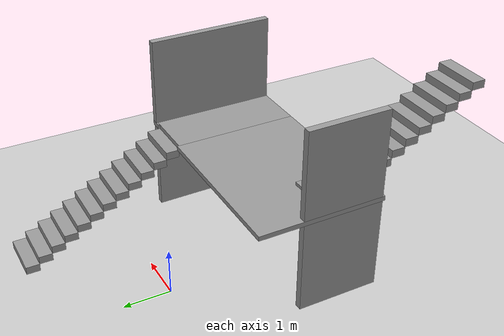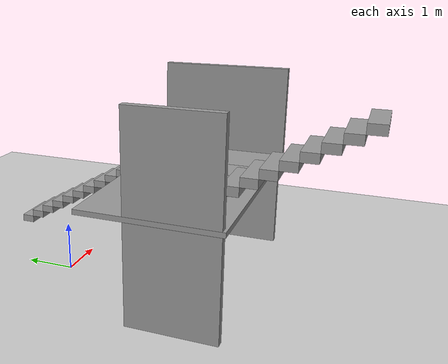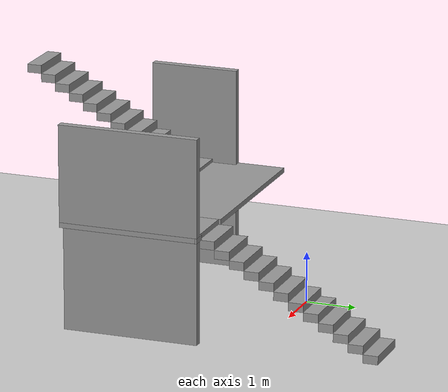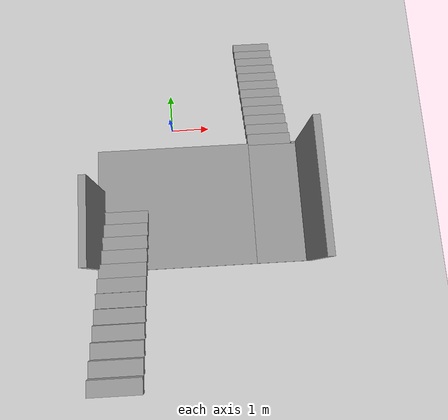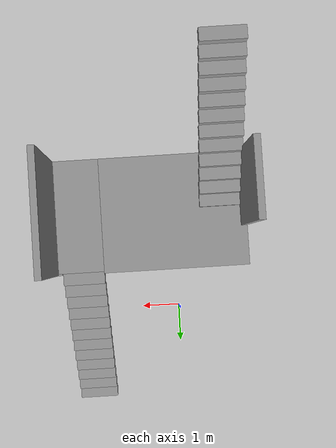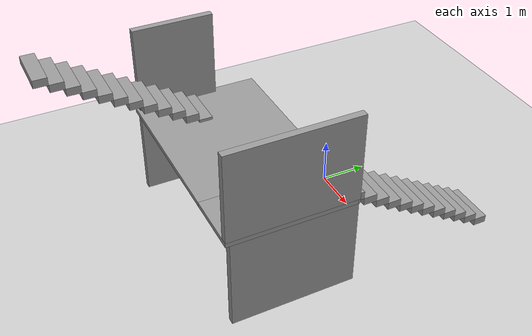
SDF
<sdf version="1.7">
 <world name="default">
  <light name="sun" type="directional">
   <pose>0 0 10 0 -0 0</pose>
   <diffuse>0.8 0.8 0.8 1</diffuse>
   <specular>0.2 0.2 0.2 1</specular>
   <attenuation>
    <range>1000</range>
    <constant>0.9</constant>
    <linear>0.01</linear>
    <quadratic>0.001</quadratic>
   </attenuation>
   <direction>-0.5 0.1 -0.9</direction>
   <spot><inner_angle>0</inner_angle><outer_angle>0</outer_angle><falloff>0</falloff></spot>
  </light>
  <model name="ground_plane">
   <static>1</static>
   <link name="link">
    <collision name="collision">
     <geometry><plane><normal>0 0 1</normal><size>100 100</size></plane></geometry>
     <surface><friction><ode><mu>100</mu><mu2>50</mu2></ode></friction></surface>
    </collision>
    <visual name="visual">
     <cast_shadows>0</cast_shadows>
     <geometry><plane><normal>0 0 1</normal><size>100 100</size></plane></geometry>
     <material>
      <script><uri>file://media/materials/scripts/gazebo.material</uri><name>Gazebo/Grey</name></script>
     </material>
    </visual>
   </link>
  </model>
  <gravity>0 0 -9.8</gravity>
  <magnetic_field>6e-06 2.3e-05 -4.2e-05</magnetic_field>
  <atmosphere type="adiabatic"/>
  <physics type="ode">
   <max_step_size>0.001</max_step_size>
   <real_time_factor>1</real_time_factor>
   <real_time_update_rate>1000</real_time_update_rate>
  </physics>
  <scene><ambient>0.4 0.4 0.4 1</ambient><background>0.7 0.7 0.7 1</background><shadows>1</shadows></scene>
  <audio><device>default</device></audio>
  <spherical_coordinates>
   <surface_model>EARTH_WGS84</surface_model>
   <latitude_deg>0</latitude_deg>
   <longitude_deg>0</longitude_deg>
   <elevation>0</elevation>
   <heading_deg>0</heading_deg>
  </spherical_coordinates>
  <model name="2l">
   <pose>0.72122 -1.80053 0 0 -0 0</pose>
   <link name="Floor_9">
    <pose>-2e-05 -0.636474 2 0 -0 0</pose>
    <visual name="Floor_9_Visual_0">
     <pose>-0.621974 0 0.05 0 -0 0</pose>
     <geometry><box><size>3.4898 2.75 0.1</size></box></geometry>
     <material>
      <script><uri>file://media/materials/scripts/gazebo.material</uri><name>Gazebo/Grey</name></script>
      <ambient>1 1 1 1</ambient>
     </material>
     <meta><layer>1</layer></meta>
    </visual>
    <collision name="Floor_9_Collision_0">
     <geometry><box><size>3.4898 2.75 0.1</size></box></geometry>
     <pose>-0.621974 0 0.05 0 -0 0</pose>
    </collision>
    <visual name="Floor_9_Visual_1">
     <pose>1.7449 -0.019375 0.05 0 -0 0</pose>
     <geometry><box><size>1.24395 2.71125 0.1</size></box></geometry>
     <material>
      <script><uri>file://media/materials/scripts/gazebo.material</uri><name>Gazebo/Grey</name></script>
      <ambient>1 1 1 1</ambient>
     </material>
     <meta><layer>1</layer></meta>
    </visual>
    <collision name="Floor_9_Collision_1">
     <geometry><box><size>1.24395 2.71125 0.1</size></box></geometry>
     <pose>1.7449 -0.019375 0.05 0 -0 0</pose>
    </collision>
    <visual name="Floor_9_Visual_2">
     <pose>2.2449 1.35563 0.05 0 -0 0</pose>
     <geometry><box><size>0.243948 0.03875 0.1</size></box></geometry>
     <material>
      <script><uri>file://media/materials/scripts/gazebo.material</uri><name>Gazebo/Grey</name></script>
      <ambient>1 1 1 1</ambient>
     </material>
     <meta><layer>1</layer></meta>
    </visual>
    <collision name="Floor_9_Collision_2">
     <geometry><box><size>0.243948 0.03875 0.1</size></box></geometry>
     <pose>2.2449 1.35563 0.05 0 -0 0</pose>
    </collision>
   </link>
   <link name="Stairs_2">
    <visual name="Stairs_2_Visual_0">
     <pose>1.62291 4.05394 0.083333 0 -0 0</pose>
     <geometry><box><size>1 0.291667 0.166667</size></box></geometry>
     <material>
      <script><uri>file://media/materials/scripts/gazebo.material</uri><name>Gazebo/Grey</name></script>
      <ambient>1 1 1 1</ambient>
     </material>
     <meta><layer>0</layer></meta>
    </visual>
    <collision name="Stairs_2_Collision_0">
     <geometry><box><size>1 0.291667 0.166667</size></box></geometry>
     <pose>1.62291 4.05394 0.083333 0 -0 0</pose>
    </collision>
    <visual name="Stairs_2_Visual_1">
     <pose>1.62291 3.76228 0.25 0 -0 0</pose>
     <geometry><box><size>1 0.291667 0.166667</size></box></geometry>
     <material>
      <script><uri>file://media/materials/scripts/gazebo.material</uri><name>Gazebo/Grey</name></script>
      <ambient>1 1 1 1</ambient>
     </material>
     <meta><layer>0</layer></meta>
    </visual>
    <collision name="Stairs_2_Collision_1">
     <geometry><box><size>1 0.291667 0.166667</size></box></geometry>
     <pose>1.62291 3.76228 0.25 0 -0 0</pose>
    </collision>
    <visual name="Stairs_2_Visual_2">
     <pose>1.62291 3.47061 0.416667 0 -0 0</pose>
     <geometry><box><size>1 0.291667 0.166667</size></box></geometry>
     <material>
      <script><uri>file://media/materials/scripts/gazebo.material</uri><name>Gazebo/Grey</name></script>
      <ambient>1 1 1 1</ambient>
     </material>
     <meta><layer>0</layer></meta>
    </visual>
    <collision name="Stairs_2_Collision_2">
     <geometry><box><size>1 0.291667 0.166667</size></box></geometry>
     <pose>1.62291 3.47061 0.416667 0 -0 0</pose>
    </collision>
    <visual name="Stairs_2_Visual_3">
     <pose>1.62291 3.17894 0.583333 0 -0 0</pose>
     <geometry><box><size>1 0.291667 0.166667</size></box></geometry>
     <material>
      <script><uri>file://media/materials/scripts/gazebo.material</uri><name>Gazebo/Grey</name></script>
      <ambient>1 1 1 1</ambient>
     </material>
     <meta><layer>0</layer></meta>
    </visual>
    <collision name="Stairs_2_Collision_3">
     <geometry><box><size>1 0.291667 0.166667</size></box></geometry>
     <pose>1.62291 3.17894 0.583333 0 -0 0</pose>
    </collision>
    <visual name="Stairs_2_Visual_4">
     <pose>1.62291 2.88728 0.75 0 -0 0</pose>
     <geometry><box><size>1 0.291667 0.166667</size></box></geometry>
     <material>
      <script><uri>file://media/materials/scripts/gazebo.material</uri><name>Gazebo/Grey</name></script>
      <ambient>1 1 1 1</ambient>
     </material>
     <meta><layer>0</layer></meta>
    </visual>
    <collision name="Stairs_2_Collision_4">
     <geometry><box><size>1 0.291667 0.166667</size></box></geometry>
     <pose>1.62291 2.88728 0.75 0 -0 0</pose>
    </collision>
    <visual name="Stairs_2_Visual_5">
     <pose>1.62291 2.59561 0.916667 0 -0 0</pose>
     <geometry><box><size>1 0.291667 0.166667</size></box></geometry>
     <material>
      <script><uri>file://media/materials/scripts/gazebo.material</uri><name>Gazebo/Grey</name></script>
      <ambient>1 1 1 1</ambient>
     </material>
     <meta><layer>0</layer></meta>
    </visual>
    <collision name="Stairs_2_Collision_5">
     <geometry><box><size>1 0.291667 0.166667</size></box></geometry>
     <pose>1.62291 2.59561 0.916667 0 -0 0</pose>
    </collision>
    <visual name="Stairs_2_Visual_6">
     <pose>1.62291 2.30394 1.08333 0 -0 0</pose>
     <geometry><box><size>1 0.291667 0.166667</size></box></geometry>
     <material>
      <script><uri>file://media/materials/scripts/gazebo.material</uri><name>Gazebo/Grey</name></script>
      <ambient>1 1 1 1</ambient>
     </material>
     <meta><layer>0</layer></meta>
    </visual>
    <collision name="Stairs_2_Collision_6">
     <geometry><box><size>1 0.291667 0.166667</size></box></geometry>
     <pose>1.62291 2.30394 1.08333 0 -0 0</pose>
    </collision>
    <visual name="Stairs_2_Visual_7">
     <pose>1.62291 2.01228 1.25 0 -0 0</pose>
     <geometry><box><size>1 0.291667 0.166667</size></box></geometry>
     <material>
      <script><uri>file://media/materials/scripts/gazebo.material</uri><name>Gazebo/Grey</name></script>
      <ambient>1 1 1 1</ambient>
     </material>
     <meta><layer>0</layer></meta>
    </visual>
    <collision name="Stairs_2_Collision_7">
     <geometry><box><size>1 0.291667 0.166667</size></box></geometry>
     <pose>1.62291 2.01228 1.25 0 -0 0</pose>
    </collision>
    <visual name="Stairs_2_Visual_8">
     <pose>1.62291 1.72061 1.41667 0 -0 0</pose>
     <geometry><box><size>1 0.291667 0.166667</size></box></geometry>
     <material>
      <script><uri>file://media/materials/scripts/gazebo.material</uri><name>Gazebo/Grey</name></script>
      <ambient>1 1 1 1</ambient>
     </material>
     <meta><layer>0</layer></meta>
    </visual>
    <collision name="Stairs_2_Collision_8">
     <geometry><box><size>1 0.291667 0.166667</size></box></geometry>
     <pose>1.62291 1.72061 1.41667 0 -0 0</pose>
    </collision>
    <visual name="Stairs_2_Visual_9">
     <pose>1.62291 1.42894 1.58333 0 -0 0</pose>
     <geometry><box><size>1 0.291667 0.166667</size></box></geometry>
     <material>
      <script><uri>file://media/materials/scripts/gazebo.material</uri><name>Gazebo/Grey</name></script>
      <ambient>1 1 1 1</ambient>
     </material>
     <meta><layer>0</layer></meta>
    </visual>
    <collision name="Stairs_2_Collision_9">
     <geometry><box><size>1 0.291667 0.166667</size></box></geometry>
     <pose>1.62291 1.42894 1.58333 0 -0 0</pose>
    </collision>
    <visual name="Stairs_2_Visual_10">
     <pose>1.62291 1.13728 1.75 0 -0 0</pose>
     <geometry><box><size>1 0.291667 0.166667</size></box></geometry>
     <material>
      <script><uri>file://media/materials/scripts/gazebo.material</uri><name>Gazebo/Grey</name></script>
      <ambient>1 1 1 1</ambient>
     </material>
     <meta><layer>0</layer></meta>
    </visual>
    <collision name="Stairs_2_Collision_10">
     <geometry><box><size>1 0.291667 0.166667</size></box></geometry>
     <pose>1.62291 1.13728 1.75 0 -0 0</pose>
    </collision>
    <visual name="Stairs_2_Visual_11">
     <pose>1.62291 0.845609 1.91667 0 -0 0</pose>
     <geometry><box><size>1 0.291667 0.166667</size></box></geometry>
     <material>
      <script><uri>file://media/materials/scripts/gazebo.material</uri><name>Gazebo/Grey</name></script>
      <ambient>1 1 1 1</ambient>
     </material>
     <meta><layer>0</layer></meta>
    </visual>
    <collision name="Stairs_2_Collision_11">
     <geometry><box><size>1 0.291667 0.166667</size></box></geometry>
     <pose>1.62291 0.845609 1.91667 0 -0 0</pose>
    </collision>
   </link>
   <link name="Stairs_8">
    <visual name="Stairs_8_Visual_0">
     <pose>-1.74828 -0.845609 2.08333 0 -0 0</pose>
     <geometry><box><size>1 0.291667 0.166667</size></box></geometry>
     <material>
      <script><uri>file://media/materials/scripts/gazebo.material</uri><name>Gazebo/Grey</name></script>
      <ambient>1 1 1 1</ambient>
     </material>
     <meta><layer>1</layer></meta>
    </visual>
    <collision name="Stairs_8_Collision_0">
     <geometry><box><size>1 0.291667 0.166667</size></box></geometry>
     <pose>-1.74828 -0.845609 2.08333 0 -0 0</pose>
    </collision>
    <visual name="Stairs_8_Visual_1">
     <pose>-1.74828 -1.13728 2.25 0 -0 0</pose>
     <geometry><box><size>1 0.291667 0.166667</size></box></geometry>
     <material>
      <script><uri>file://media/materials/scripts/gazebo.material</uri><name>Gazebo/Grey</name></script>
      <ambient>1 1 1 1</ambient>
     </material>
     <meta><layer>1</layer></meta>
    </visual>
    <collision name="Stairs_8_Collision_1">
     <geometry><box><size>1 0.291667 0.166667</size></box></geometry>
     <pose>-1.74828 -1.13728 2.25 0 -0 0</pose>
    </collision>
    <visual name="Stairs_8_Visual_2">
     <pose>-1.74828 -1.42894 2.41667 0 -0 0</pose>
     <geometry><box><size>1 0.291667 0.166667</size></box></geometry>
     <material>
      <script><uri>file://media/materials/scripts/gazebo.material</uri><name>Gazebo/Grey</name></script>
      <ambient>1 1 1 1</ambient>
     </material>
     <meta><layer>1</layer></meta>
    </visual>
    <collision name="Stairs_8_Collision_2">
     <geometry><box><size>1 0.291667 0.166667</size></box></geometry>
     <pose>-1.74828 -1.42894 2.41667 0 -0 0</pose>
    </collision>
    <visual name="Stairs_8_Visual_3">
     <pose>-1.74828 -1.72061 2.58333 0 -0 0</pose>
     <geometry><box><size>1 0.291667 0.166667</size></box></geometry>
     <material>
      <script><uri>file://media/materials/scripts/gazebo.material</uri><name>Gazebo/Grey</name></script>
      <ambient>1 1 1 1</ambient>
     </material>
     <meta><layer>1</layer></meta>
    </visual>
    <collision name="Stairs_8_Collision_3">
     <geometry><box><size>1 0.291667 0.166667</size></box></geometry>
     <pose>-1.74828 -1.72061 2.58333 0 -0 0</pose>
    </collision>
    <visual name="Stairs_8_Visual_4">
     <pose>-1.74828 -2.01227 2.75 0 -0 0</pose>
     <geometry><box><size>1 0.291667 0.166667</size></box></geometry>
     <material>
      <script><uri>file://media/materials/scripts/gazebo.material</uri><name>Gazebo/Grey</name></script>
      <ambient>1 1 1 1</ambient>
     </material>
     <meta><layer>1</layer></meta>
    </visual>
    <collision name="Stairs_8_Collision_4">
     <geometry><box><size>1 0.291667 0.166667</size></box></geometry>
     <pose>-1.74828 -2.01227 2.75 0 -0 0</pose>
    </collision>
    <visual name="Stairs_8_Visual_5">
     <pose>-1.74828 -2.30394 2.91667 0 -0 0</pose>
     <geometry><box><size>1 0.291667 0.166667</size></box></geometry>
     <material>
      <script><uri>file://media/materials/scripts/gazebo.material</uri><name>Gazebo/Grey</name></script>
      <ambient>1 1 1 1</ambient>
     </material>
     <meta><layer>1</layer></meta>
    </visual>
    <collision name="Stairs_8_Collision_5">
     <geometry><box><size>1 0.291667 0.166667</size></box></geometry>
     <pose>-1.74828 -2.30394 2.91667 0 -0 0</pose>
    </collision>
    <visual name="Stairs_8_Visual_6">
     <pose>-1.74828 -2.59561 3.08333 0 -0 0</pose>
     <geometry><box><size>1 0.291667 0.166667</size></box></geometry>
     <material>
      <script><uri>file://media/materials/scripts/gazebo.material</uri><name>Gazebo/Grey</name></script>
      <ambient>1 1 1 1</ambient>
     </material>
     <meta><layer>1</layer></meta>
    </visual>
    <collision name="Stairs_8_Collision_6">
     <geometry><box><size>1 0.291667 0.166667</size></box></geometry>
     <pose>-1.74828 -2.59561 3.08333 0 -0 0</pose>
    </collision>
    <visual name="Stairs_8_Visual_7">
     <pose>-1.74828 -2.88727 3.25 0 -0 0</pose>
     <geometry><box><size>1 0.291667 0.166667</size></box></geometry>
     <material>
      <script><uri>file://media/materials/scripts/gazebo.material</uri><name>Gazebo/Grey</name></script>
      <ambient>1 1 1 1</ambient>
     </material>
     <meta><layer>1</layer></meta>
    </visual>
    <collision name="Stairs_8_Collision_7">
     <geometry><box><size>1 0.291667 0.166667</size></box></geometry>
     <pose>-1.74828 -2.88727 3.25 0 -0 0</pose>
    </collision>
    <visual name="Stairs_8_Visual_8">
     <pose>-1.74828 -3.17894 3.41667 0 -0 0</pose>
     <geometry><box><size>1 0.291667 0.166667</size></box></geometry>
     <material>
      <script><uri>file://media/materials/scripts/gazebo.material</uri><name>Gazebo/Grey</name></script>
      <ambient>1 1 1 1</ambient>
     </material>
     <meta><layer>1</layer></meta>
    </visual>
    <collision name="Stairs_8_Collision_8">
     <geometry><box><size>1 0.291667 0.166667</size></box></geometry>
     <pose>-1.74828 -3.17894 3.41667 0 -0 0</pose>
    </collision>
    <visual name="Stairs_8_Visual_9">
     <pose>-1.74828 -3.47061 3.58333 0 -0 0</pose>
     <geometry><box><size>1 0.291667 0.166667</size></box></geometry>
     <material>
      <script><uri>file://media/materials/scripts/gazebo.material</uri><name>Gazebo/Grey</name></script>
      <ambient>1 1 1 1</ambient>
     </material>
     <meta><layer>1</layer></meta>
    </visual>
    <collision name="Stairs_8_Collision_9">
     <geometry><box><size>1 0.291667 0.166667</size></box></geometry>
     <pose>-1.74828 -3.47061 3.58333 0 -0 0</pose>
    </collision>
    <visual name="Stairs_8_Visual_10">
     <pose>-1.74828 -3.76227 3.75 0 -0 0</pose>
     <geometry><box><size>1 0.291667 0.166667</size></box></geometry>
     <material>
      <script><uri>file://media/materials/scripts/gazebo.material</uri><name>Gazebo/Grey</name></script>
      <ambient>1 1 1 1</ambient>
     </material>
     <meta><layer>1</layer></meta>
    </visual>
    <collision name="Stairs_8_Collision_10">
     <geometry><box><size>1 0.291667 0.166667</size></box></geometry>
     <pose>-1.74828 -3.76227 3.75 0 -0 0</pose>
    </collision>
    <visual name="Stairs_8_Visual_11">
     <pose>-1.74828 -4.05394 3.91667 0 -0 0</pose>
     <geometry><box><size>1 0.291667 0.166667</size></box></geometry>
     <material>
      <script><uri>file://media/materials/scripts/gazebo.material</uri><name>Gazebo/Grey</name></script>
      <ambient>1 1 1 1</ambient>
     </material>
     <meta><layer>1</layer></meta>
    </visual>
    <collision name="Stairs_8_Collision_11">
     <geometry><box><size>1 0.291667 0.166667</size></box></geometry>
     <pose>-1.74828 -4.05394 3.91667 0 -0 0</pose>
    </collision>
   </link>
   <link name="Wall_4">
    <collision name="Wall_4_Collision">
     <geometry><box><size>1.75 0.15 2</size></box></geometry>
     <pose>0 0 1 0 -0 0</pose>
    </collision>
    <visual name="Wall_4_Visual">
     <pose>0 0 1 0 -0 0</pose>
     <geometry><box><size>1.75 0.15 2</size></box></geometry>
     <material>
      <script><uri>file://media/materials/scripts/gazebo.material</uri><name>Gazebo/Grey</name></script>
      <ambient>1 1 1 1</ambient>
     </material>
     <meta><layer>0</layer></meta>
    </visual>
    <pose>-2.29182 -1.08295 0 0 -0 1.5708</pose>
   </link>
   <link name="Wall_41">
    <collision name="Wall_41_Collision">
     <geometry><box><size>1.75 0.15 2</size></box></geometry>
     <pose>0 0 1 0 -0 0</pose>
    </collision>
    <visual name="Wall_41_Visual">
     <pose>0 0 1 0 -0 0</pose>
     <geometry><box><size>1.75 0.15 2</size></box></geometry>
     <material>
      <script><uri>file://media/materials/scripts/gazebo.material</uri><name>Gazebo/Grey</name></script>
      <ambient>1 1 1 1</ambient>
     </material>
     <meta><layer>1</layer></meta>
    </visual>
    <pose>-2.29182 -1.08295 2 0 -0 1.5708</pose>
   </link>
   <link name="Wall_45">
    <collision name="Wall_45_Collision">
     <geometry><box><size>2.75 0.15 2</size></box></geometry>
     <pose>0 0 1 0 -0 0</pose>
    </collision>
    <visual name="Wall_45_Visual">
     <pose>0 0 1 0 -0 0</pose>
     <geometry><box><size>2.75 0.15 2</size></box></geometry>
     <material>
      <script><uri>file://media/materials/scripts/gazebo.material</uri><name>Gazebo/Grey</name></script>
      <ambient>1 1 1 1</ambient>
     </material>
     <meta><layer>1</layer></meta>
    </visual>
    <pose>2.29178 -0.636474 2 0 -0 -1.5708</pose>
   </link>
   <link name="Wall_8">
    <collision name="Wall_8_Collision">
     <geometry><box><size>2.65916 0.15 2</size></box></geometry>
     <pose>0 0 1 0 -0 0</pose>
    </collision>
    <visual name="Wall_8_Visual">
     <pose>0 0 1 0 -0 0</pose>
     <geometry><box><size>2.65916 0.15 2</size></box></geometry>
     <material>
      <script><uri>file://media/materials/scripts/gazebo.material</uri><name>Gazebo/Grey</name></script>
      <ambient>1 1 1 1</ambient>
     </material>
     <meta><layer>0</layer></meta>
    </visual>
    <pose>2.27829 -0.601987 0 0 -0 1.58103</pose>
   </link>
   <static>1</static>
  </model>
 </world>
</sdf>
